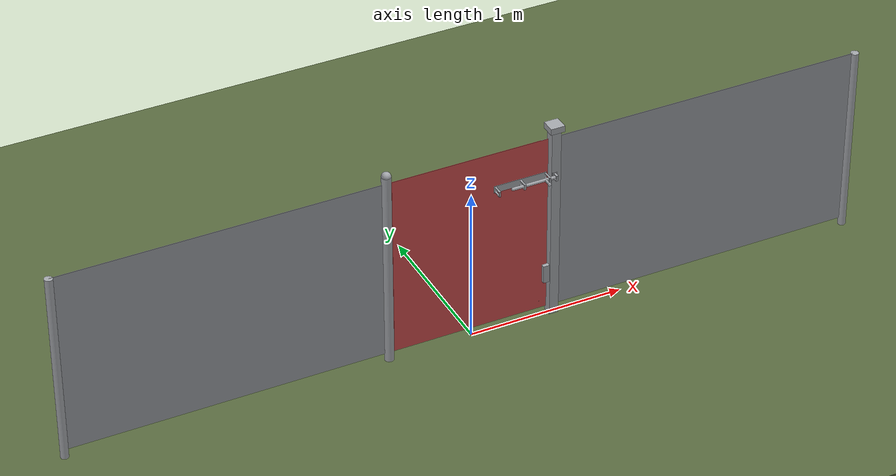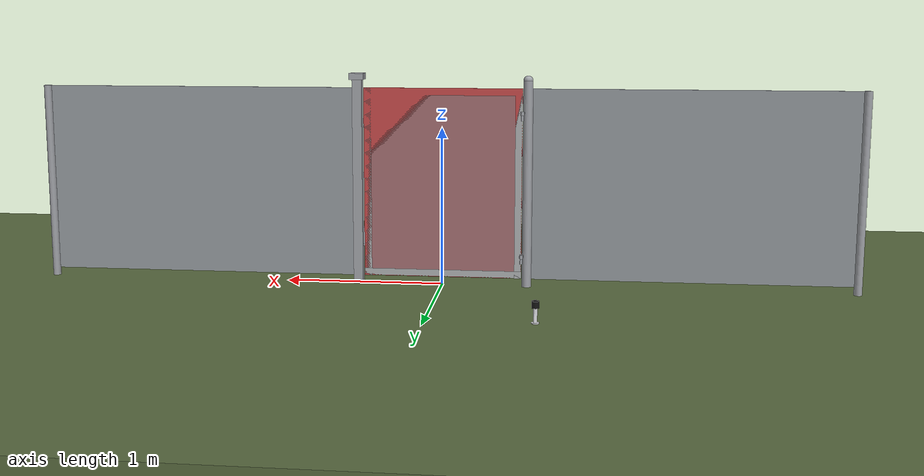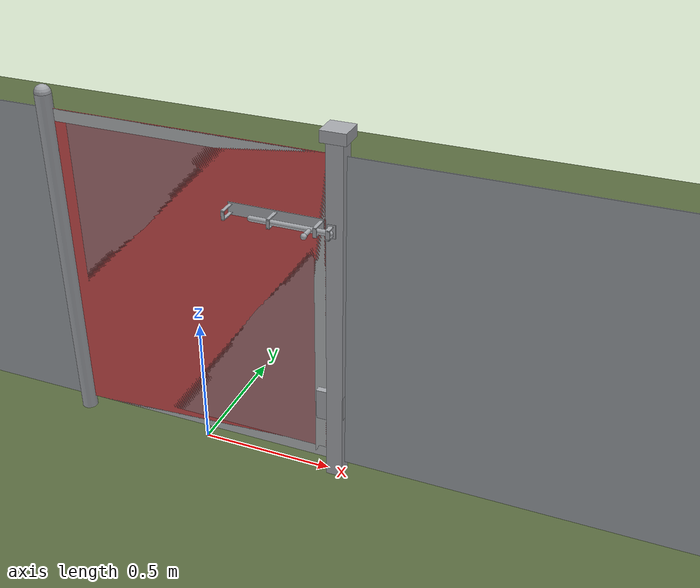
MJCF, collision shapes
<?xml version="1.0" ?>
<mujoco model="db0162_gate_swing_full">
  <compiler angle="radian" meshdir="../../hardware" texturedir="../../textures" autolimits="true" inertiafromgeom="false"/>
  <option timestep="0.002" integrator="implicitfast" cone="elliptic" impratio="10" noslip_iterations="3">
    <flag multiccd="enable"/>
  </option>
  <size memory="16M"/>
  <default>
    <geom condim="4" solref="0.005 1" solimp="0.95 0.99 0.001"/>
    <joint solreflimit="0.005 1" solimplimit="0.95 0.99 0.001"/>
    <tendon solreflimit="0.005 1"/>
    <equality solref="0.002 1"/>
  </default>
  <visual>
    <headlight ambient="0.4 0.4 0.4" diffuse="0.7 0.7 0.7" specular="0.2 0.2 0.2"/>
    <quality shadowsize="4096"/>
    <map znear="0.01" zfar="60"/>
  </visual>
  <asset>
    <mesh name="strap_hinge_3c1a7c1a5f" file="strap_hinge_3c1a7c1a5f.obj"/>
    <material name="mat_floor" rgba="0.35 0.42 0.25 1" specular="0.2" shininess="0.15" reflectance="0"/>
    <material name="mat_wall" rgba="0.78 0.76 0.7 1" specular="0.2" shininess="0.1" reflectance="0"/>
    <material name="mat_leaf" rgba="0.7 0.71 0.72 1" specular="0.74" shininess="0.5" reflectance="0.36"/>
    <material name="mat_mesh_infill" rgba="0.6 0.62 0.64 0.55" specular="0.68" shininess="0.3" reflectance="0.1"/>
    <material name="mat_hinge" rgba="0.65 0.66 0.68 1" specular="0.74" shininess="0.5" reflectance="0.36"/>
    <material name="mat_op_steel_galvanized" rgba="0.65 0.66 0.68 1" specular="0.74" shininess="0.5" reflectance="0.36"/>
    <material name="mat_frame" rgba="0.65 0.66 0.68 1" specular="0.74" shininess="0.5" reflectance="0.36"/>
    <material name="mat_bumper_stop" rgba="0.08 0.08 0.08 1" specular="0.2" shininess="0.1" reflectance="0"/>
    <material name="mat_stop_base" rgba="0.9 0.9 0.92 1" specular="0.8" shininess="0.9" reflectance="0.4"/>
    <material name="mat_fence_mesh" rgba="0.6 0.62 0.64 0.5" specular="0.68" shininess="0.3" reflectance="0.1"/>
    <texture name="skybox" type="skybox" builtin="gradient" rgb1="0.6 0.7 0.85" rgb2="0.9 0.92 0.95" width="256" height="256"/>
  </asset>
  <worldbody>
    <light name="sun" pos="1.5 -2.5 4" dir="-0.3 0.5 -0.8" directional="true" diffuse="0.8 0.8 0.8" specular="0.3 0.3 0.3" castshadow="true"/>
    <light name="fill" pos="-1.5 2.5 3" dir="0.3 -0.5 -0.7" directional="true" diffuse="0.35 0.35 0.4" castshadow="false"/>
    <camera name="robot_view" pos="0 -1.875 1.135" xyaxes="1 0 0 0 0.26963 0.962964" fovy="52"/>
    <camera name="far_view" pos="0 1.875 1.135" xyaxes="-1 0 0 0 -0.26963 0.962964" fovy="52"/>
    <camera name="iso" pos="1.425 -1.575 1.435" xyaxes="0.741536 0.670913 0 -0.242917 0.268487 0.932151" fovy="46"/>
    <camera name="detail_handle" pos="0.639 -0.9 1.28" xyaxes="0.97561 0.219512 0 -0.070934 0.315262 0.94635" fovy="38"/>
    <geom name="floor" type="box" size="6 6 0.05" pos="0 0 -0.05" material="mat_floor" group="0" contype="1" conaffinity="1" friction="0.8 0.005 0.0001" density="2400"/>
    <geom name="hinge_pintle_0" type="cylinder" size="0.008 0.02" pos="-0.503 0.05 0.174" material="mat_hinge" group="1" contype="0" conaffinity="0" density="7850"/>
    <geom name="hinge_pintle_1" type="cylinder" size="0.008 0.02" pos="-0.503 0.05 1.074" material="mat_hinge" group="1" contype="0" conaffinity="0" density="7850"/>
    <geom name="leaf_slide_bolt_keeper_leg_n" type="box" size="0.007 0.0025 0.017" pos="0.526 -0.047 0.9845" quat="0.707107 0.707107 0 0" material="mat_op_steel_galvanized" group="0" contype="1" conaffinity="1" friction="0.6 0.005 0.0001" density="7800"/>
    <geom name="leaf_slide_bolt_keeper_leg_p" type="box" size="0.007 0.0025 0.017" pos="0.526 -0.047 1.0155" quat="0.707107 0.707107 0 0" material="mat_op_steel_galvanized" group="0" contype="1" conaffinity="1" friction="0.6 0.005 0.0001" density="7800"/>
    <geom name="leaf_slide_bolt_keeper_bridge" type="box" size="0.007 0.018 0.0025" pos="0.526 -0.0615 1" quat="0.707107 0.707107 0 0" material="mat_op_steel_galvanized" group="0" contype="1" conaffinity="1" friction="0.6 0.005 0.0001" density="7800"/>
    <geom name="leaf_slide_bolt_keeper_base" type="box" size="0.015 0.024 0.001" pos="0.526 -0.031 1" quat="0.707107 0.707107 0 0" material="mat_op_steel_galvanized" group="1" contype="0" conaffinity="0" density="7800"/>
    <geom name="post_hinge" type="cylinder" size="0.03 0.65" pos="-0.536 0 0.65" material="mat_frame" group="0" contype="1" conaffinity="1" friction="0.6 0.005 0.0001" density="800"/>
    <geom name="post_hinge_cap" type="sphere" size="0.03" pos="-0.536 0 1.3" material="mat_frame" group="1" contype="0" conaffinity="0" density="800"/>
    <geom name="post_latch" type="box" size="0.03 0.03 0.65" pos="0.536 0 0.65" material="mat_frame" group="0" contype="1" conaffinity="1" friction="0.6 0.005 0.0001" density="800"/>
    <geom name="post_latch_cap" type="box" size="0.045 0.045 0.02" pos="0.536 0 1.32" material="mat_frame" group="1" contype="0" conaffinity="0" density="800"/>
    <geom name="gate_stop" type="box" size="0.02 0.012 0.06" pos="0.486 -0.0135 0.3" material="mat_frame" group="0" contype="1" conaffinity="1" friction="0.6 0.005 0.0001" density="800"/>
    <geom name="door_stop_base" type="cylinder" size="0.022 0.003" pos="-0.625488 0.891515 0.003" material="mat_stop_base" group="0" contype="1" conaffinity="1" friction="0.6 0.005 0.0001" density="7850"/>
    <geom name="door_stop_post" type="cylinder" size="0.012 0.042" pos="-0.625488 0.891515 0.048" material="mat_stop_base" group="0" contype="1" conaffinity="1" friction="0.6 0.005 0.0001" density="7850"/>
    <geom name="door_stop_bumper" type="cylinder" size="0.022 0.02" pos="-0.625488 0.891515 0.11" material="mat_bumper_stop" group="0" contype="1" conaffinity="1" friction="0.6 0.005 0.0001" density="1100"/>
    <geom name="fence_l" type="box" size="1 0.002 0.6" pos="-1.566 0 0.65" material="mat_fence_mesh" group="0" contype="1" conaffinity="1" friction="0.6 0.005 0.0001" density="100"/>
    <geom name="fence_post_l" type="cylinder" size="0.025 0.625" pos="-2.566 0 0.625" material="mat_frame" group="0" contype="1" conaffinity="1" friction="0.6 0.005 0.0001" density="7850"/>
    <geom name="fence_r" type="box" size="1 0.002 0.6" pos="1.566 0 0.65" material="mat_fence_mesh" group="0" contype="1" conaffinity="1" friction="0.6 0.005 0.0001" density="100"/>
    <geom name="fence_post_r" type="cylinder" size="0.025 0.625" pos="2.566 0 0.625" material="mat_frame" group="0" contype="1" conaffinity="1" friction="0.6 0.005 0.0001" density="7850"/>
    <geom name="hinge_pintle_0_strap_0" type="box" size="0.0064 0.0065 0.016" pos="-0.503 0.036 0.174" material="mat_hinge" group="1" contype="0" conaffinity="0" density="7850"/>
    <geom name="hinge_pintle_1_strap_0" type="box" size="0.0064 0.0065 0.016" pos="-0.503 0.036 1.074" material="mat_hinge" group="1" contype="0" conaffinity="0" density="7850"/>
    <geom name="gate_stop_strap_0" type="box" size="0.0305 0.01255 0.048" pos="0.536 -0.01055 0.3" material="mat_frame" group="1" contype="0" conaffinity="0" density="7850"/>
    <site name="approach_point" pos="0 -1.5 0" quat="1 0 0 0" size="0.05" rgba="0.2 0.9 0.2 0.5" group="4"/>
    <site name="goal_point" pos="0 1.5 0" quat="1 0 0 0" size="0.05" rgba="0.2 0.9 0.2 0.5" group="4"/>
    <site name="door_plane_center" pos="0 0 0.61" quat="1 0 0 0" size="0.02" rgba="0.2 0.9 0.2 0.5" group="4"/>
    <body name="leaf" pos="-0.506 0 0">
      <inertial pos="0.406818 0.002261 0.683057" mass="5.590675" quat="0.583827 -0.589841 -0.388227 -0.400642" diaginertia="0.604212971 0.824816755 1.427169209"/>
      <joint name="leaf_hinge" type="hinge" axis="0 0 1" pos="0.003 0.05 0" limited="true" range="0 1.745329" damping="0.26672" frictionloss="0.562567" armature="0.02"/>
      <geom name="leaf_slab_col" type="box" size="0.5 0.0015 0.6" pos="0.503 0 0.65" material="mat_leaf" group="3" contype="1" conaffinity="1" rgba="0.8 0.3 0.3 0.25" friction="0.45 0.005 0.0001" density="1"/>
      <geom name="leaf_rail_b" type="box" size="0.5 0.0015 0.0225" pos="0.503 0 0.0725" material="mat_leaf" group="1" contype="0" conaffinity="0" density="1"/>
      <geom name="leaf_rail_t" type="box" size="0.5 0.0015 0.0225" pos="0.503 0 1.2275" material="mat_leaf" group="1" contype="0" conaffinity="0" density="1"/>
      <geom name="leaf_stile_h" type="box" size="0.0225 0.0015 0.6" pos="0.0255 0 0.65" material="mat_leaf" group="1" contype="0" conaffinity="0" density="1"/>
      <geom name="leaf_stile_l" type="box" size="0.0225 0.0015 0.6" pos="0.9805 0 0.65" material="mat_leaf" group="1" contype="0" conaffinity="0" density="1"/>
      <geom name="leaf_mesh" type="box" size="0.455 0.0015 0.555" pos="0.503 0 0.65" material="mat_mesh_infill" group="1" contype="0" conaffinity="0" density="1"/>
      <geom name="hinge_strap_0" type="mesh" mesh="strap_hinge_3c1a7c1a5f" pos="0.003 0.0045 0.2" material="mat_hinge" group="1" contype="0" conaffinity="0" density="7850"/>
      <geom name="hinge_strap_eye_0" type="cylinder" size="0.011 0.012" pos="0.003 0.05 0.2" material="mat_hinge" group="1" contype="0" conaffinity="0" density="7850"/>
      <geom name="hinge_strap_neck_0" type="box" size="0.012 0.02675 0.006" pos="0.003 0.02725 0.2" material="mat_hinge" group="1" contype="0" conaffinity="0" density="7850"/>
      <geom name="hinge_strap_1" type="mesh" mesh="strap_hinge_3c1a7c1a5f" pos="0.003 0.0045 1.1" material="mat_hinge" group="1" contype="0" conaffinity="0" density="7850"/>
      <geom name="hinge_strap_eye_1" type="cylinder" size="0.011 0.012" pos="0.003 0.05 1.1" material="mat_hinge" group="1" contype="0" conaffinity="0" density="7850"/>
      <geom name="hinge_strap_neck_1" type="box" size="0.012 0.02675 0.006" pos="0.003 0.02725 1.1" material="mat_hinge" group="1" contype="0" conaffinity="0" density="7850"/>
      <geom name="leaf_slide_bolt_plate" type="box" size="0.1715 0.023 0.001" pos="0.8235 -0.0025 1" quat="0.707107 0.707107 0 0" material="mat_op_steel_galvanized" group="1" contype="0" conaffinity="0" density="7800"/>
      <geom name="leaf_slide_bolt_guide_0_leg_n" type="box" size="0.006 0.002 0.03075" pos="0.987 -0.03225 0.985" quat="0.707107 0.707107 0 0" material="mat_op_steel_galvanized" group="1" contype="0" conaffinity="0" density="7800"/>
      <geom name="leaf_slide_bolt_guide_0_leg_p" type="box" size="0.006 0.002 0.03075" pos="0.987 -0.03225 1.015" quat="0.707107 0.707107 0 0" material="mat_op_steel_galvanized" group="1" contype="0" conaffinity="0" density="7800"/>
      <geom name="leaf_slide_bolt_guide_0_bridge" type="box" size="0.006 0.017 0.002" pos="0.987 -0.061 1" quat="0.707107 0.707107 0 0" material="mat_op_steel_galvanized" group="1" contype="0" conaffinity="0" density="7800"/>
      <geom name="leaf_slide_bolt_guide_1_leg_n" type="box" size="0.006 0.002 0.03075" pos="0.662 -0.03225 0.985" quat="0.707107 0.707107 0 0" material="mat_op_steel_galvanized" group="1" contype="0" conaffinity="0" density="7800"/>
      <geom name="leaf_slide_bolt_guide_1_leg_p" type="box" size="0.006 0.002 0.03075" pos="0.662 -0.03225 1.015" quat="0.707107 0.707107 0 0" material="mat_op_steel_galvanized" group="1" contype="0" conaffinity="0" density="7800"/>
      <geom name="leaf_slide_bolt_guide_1_bridge" type="box" size="0.006 0.017 0.002" pos="0.662 -0.061 1" quat="0.707107 0.707107 0 0" material="mat_op_steel_galvanized" group="1" contype="0" conaffinity="0" density="7800"/>
      <geom name="leaf_slide_bolt_guide_2_leg_n" type="box" size="0.006 0.002 0.03075" pos="0.8245 -0.03225 0.985" quat="0.707107 0.707107 0 0" material="mat_op_steel_galvanized" group="1" contype="0" conaffinity="0" density="7800"/>
      <geom name="leaf_slide_bolt_guide_2_leg_p" type="box" size="0.006 0.002 0.03075" pos="0.8245 -0.03225 1.015" quat="0.707107 0.707107 0 0" material="mat_op_steel_galvanized" group="1" contype="0" conaffinity="0" density="7800"/>
      <geom name="leaf_slide_bolt_guide_2_bridge" type="box" size="0.006 0.017 0.002" pos="0.8245 -0.061 1" quat="0.707107 0.707107 0 0" material="mat_op_steel_galvanized" group="1" contype="0" conaffinity="0" density="7800"/>
      <site name="leaf_edge_mid" pos="1.003 0 0.6" quat="1 0 0 0" size="0.02" rgba="0.2 0.9 0.2 0.5" group="4"/>
      <body name="leaf_slide_bolt" pos="1.003 -0.046 1">
        <inertial pos="-0.099487 -0.004589 0" mass="0.835325" quat="0.999773 0 0 -0.021294" diaginertia="0.000170793 0.005711729 0.0058426"/>
        <joint name="leaf_slide_bolt_slide" type="slide" axis="-1 0 0" limited="true" range="0 0.08" damping="1" frictionloss="3" armature="0.1"/>
        <geom name="leaf_slide_bolt_rod" type="capsule" size="0.01 0.14" pos="-0.109 0 0" quat="0.707107 0 0.707107 0" material="mat_op_steel_galvanized" group="0" contype="1" conaffinity="1" friction="0.6 0.005 0.0001" density="7850"/>
        <geom name="leaf_slide_bolt_knob" type="capsule" size="0.008 0.017" pos="-0.038 -0.025 0" quat="0.707107 0.707107 0 0" material="mat_op_steel_galvanized" group="0" contype="1" conaffinity="1" friction="0.6 0.005 0.0001" density="7850"/>
        <geom name="leaf_slide_bolt_knob_end" type="sphere" size="0.0108" pos="-0.038 -0.05 0" material="mat_op_steel_galvanized" group="1" contype="0" conaffinity="0" density="7850"/>
        <site name="leaf_grip_n" pos="-0.038 -0.054 0" quat="1 0 0 0" size="0.012" rgba="0.2 0.9 0.2 0.5" group="4"/>
      </body>
    </body>
  </worldbody>
  <sensor>
    <jointpos name="leaf_hinge_pos" joint="leaf_hinge"/>
    <jointvel name="leaf_hinge_vel" joint="leaf_hinge"/>
    <jointpos name="leaf_slide_bolt_slide_pos" joint="leaf_slide_bolt_slide"/>
    <jointvel name="leaf_slide_bolt_slide_vel" joint="leaf_slide_bolt_slide"/>
  </sensor>
</mujoco>
